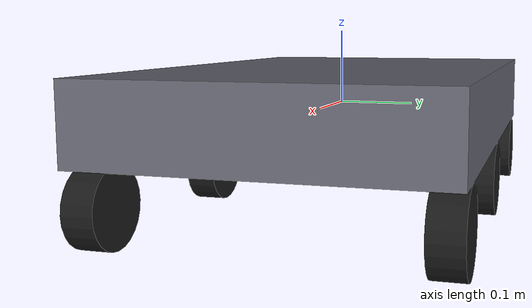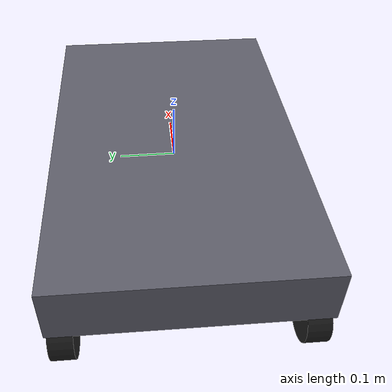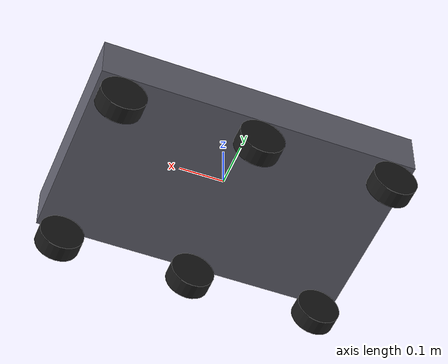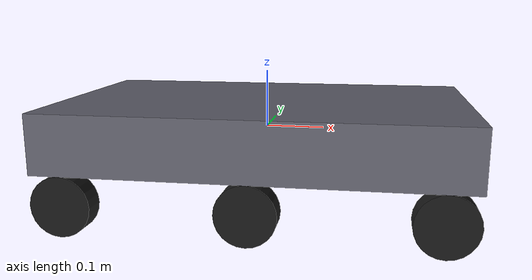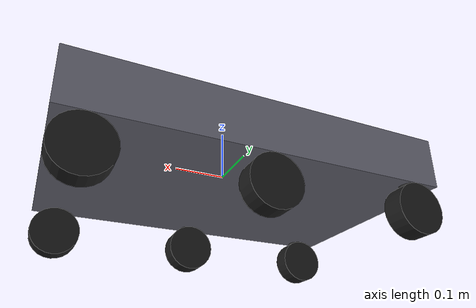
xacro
<?xml version="1.0"?>
<robot name="swerve_rover" xmlns:xacro="http://www.ros.org/wiki/xacro">

  <xacro:property name="wheel_radius"  value="0.05"/>
  <xacro:property name="wheel_width"   value="0.04"/>
  <xacro:property name="steer_len"     value="0.06"/>
  <xacro:property name="base_x"        value="0.70"/>
  <xacro:property name="base_y"        value="0.44"/>
  <xacro:property name="base_z"        value="0.10"/>
  <xacro:property name="base_mass"     value="10.0"/>
  <xacro:property name="steer_mass"    value="0.30"/>
  <xacro:property name="wheel_mass"    value="0.50"/>

  <xacro:macro name="box_inertia" params="m x y z">
    <inertial>
      <mass value="${m}"/>
      <inertia ixx="${m*(y*y+z*z)/12.0}" ixy="0" ixz="0"
               iyy="${m*(x*x+z*z)/12.0}" iyz="0"
               izz="${m*(x*x+y*y)/12.0}"/>
    </inertial>
  </xacro:macro>

  <!-- Cylinder spinning about its own y axis (wheel laid on its side). -->
  <xacro:macro name="wheel_inertia" params="m r h">
    <inertial>
      <mass value="${m}"/>
      <inertia ixx="${m*(3*r*r+h*h)/12.0}" ixy="0" ixz="0"
               iyy="${m*r*r/2.0}"          iyz="0"
               izz="${m*(3*r*r+h*h)/12.0}"/>
    </inertial>
  </xacro:macro>

  <link name="base_link">
    <visual>
      <geometry><box size="${base_x} ${base_y} ${base_z}"/></geometry>
      <material name="grey"><color rgba="0.4 0.4 0.45 1"/></material>
    </visual>
    <collision>
      <geometry><box size="${base_x} ${base_y} ${base_z}"/></geometry>
    </collision>
    <xacro:box_inertia m="${base_mass}" x="${base_x}" y="${base_y}" z="${base_z}"/>
  </link>

  <!--
    One module: a steer link rotating about z, carrying a wheel rotating
    about y. This is what makes it swerve rather than differential - the
    wheel heading is independently commanded.
  -->
  <xacro:macro name="module" params="name x y">

    <link name="${name}_steer_link">
      <visual>
        <geometry><cylinder radius="0.02" length="${steer_len}"/></geometry>
        <material name="dark"><color rgba="0.15 0.15 0.15 1"/></material>
      </visual>
      <collision>
        <geometry><cylinder radius="0.02" length="${steer_len}"/></geometry>
      </collision>
      <xacro:wheel_inertia m="${steer_mass}" r="0.02" h="${steer_len}"/>
    </link>

    <joint name="${name}_steer_joint" type="revolute">
      <parent link="base_link"/>
      <child  link="${name}_steer_link"/>
      <origin xyz="${x} ${y} ${-base_z/2}" rpy="0 0 0"/>
      <axis xyz="0 0 1"/>
      <!-- +-pi is enough: the shortest-path flip in the node guarantees a
           module never needs to swing more than a quarter turn. -->
      <limit lower="-3.15" upper="3.15" effort="20.0" velocity="10.0"/>
      <dynamics damping="0.05" friction="0.02"/>
    </joint>

    <link name="${name}_wheel_link">
      <visual>
        <origin rpy="1.5707963 0 0"/>
        <geometry><cylinder radius="${wheel_radius}" length="${wheel_width}"/></geometry>
        <material name="black"><color rgba="0.1 0.1 0.1 1"/></material>
      </visual>
      <collision>
        <origin rpy="1.5707963 0 0"/>
        <geometry><cylinder radius="${wheel_radius}" length="${wheel_width}"/></geometry>
      </collision>
      <xacro:wheel_inertia m="${wheel_mass}" r="${wheel_radius}" h="${wheel_width}"/>
    </link>

    <joint name="${name}_wheel_joint" type="continuous">
      <parent link="${name}_steer_link"/>
      <child  link="${name}_wheel_link"/>
      <origin xyz="0 0 ${-steer_len/2 - wheel_radius + 0.03}" rpy="0 0 0"/>
      <axis xyz="0 1 0"/>
      <dynamics damping="0.01"/>
    </joint>

    <gazebo reference="${name}_wheel_link">
      <!-- mu1 along roll, mu2 across it. The gap between them is what makes
           scrub cost something; equal values would hide the effect. -->
      <mu1>1.0</mu1>
      <mu2>0.9</mu2>
      <kp>1000000.0</kp>
      <kd>100.0</kd>
      <minDepth>0.001</minDepth>
    </gazebo>

  </xacro:macro>

  <xacro:module name="front_left"  x="0.3"  y="0.2"/>
  <xacro:module name="mid_left"    x="0.0"  y="0.2"/>
  <xacro:module name="back_left"   x="-0.3" y="0.2"/>
  <xacro:module name="front_right" x="0.3"  y="-0.2"/>
  <xacro:module name="mid_right"   x="0.0"  y="-0.2"/>
  <xacro:module name="back_right"  x="-0.3" y="-0.2"/>

  <ros2_control name="GazeboSystem" type="system">
    <hardware>
      <plugin>gazebo_ros2_control/GazeboSystem</plugin>
    </hardware>

    <xacro:macro name="module_iface" params="name">
      <joint name="${name}_steer_joint">
        <command_interface name="position">
          <param name="min">-3.15</param>
          <param name="max">3.15</param>
        </command_interface>
        <state_interface name="position"/>
        <state_interface name="velocity"/>
      </joint>
      <joint name="${name}_wheel_joint">
        <command_interface name="velocity">
          <param name="min">-40.0</param>
          <param name="max">40.0</param>
        </command_interface>
        <state_interface name="position"/>
        <state_interface name="velocity"/>
      </joint>
    </xacro:macro>

    <xacro:module_iface name="front_left"/>
    <xacro:module_iface name="mid_left"/>
    <xacro:module_iface name="back_left"/>
    <xacro:module_iface name="front_right"/>
    <xacro:module_iface name="mid_right"/>
    <xacro:module_iface name="back_right"/>
  </ros2_control>

  <gazebo>
    <plugin filename="libgazebo_ros2_control.so" name="gazebo_ros2_control">
      <parameters>$(find swerve_sim)/config/controllers.yaml</parameters>
    </plugin>
  </gazebo>

</robot>
